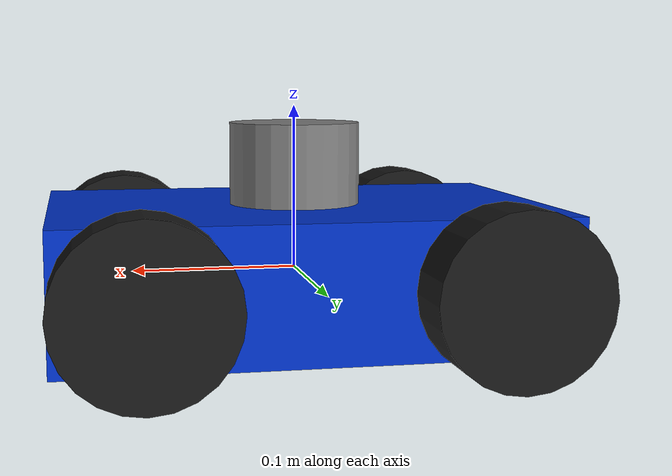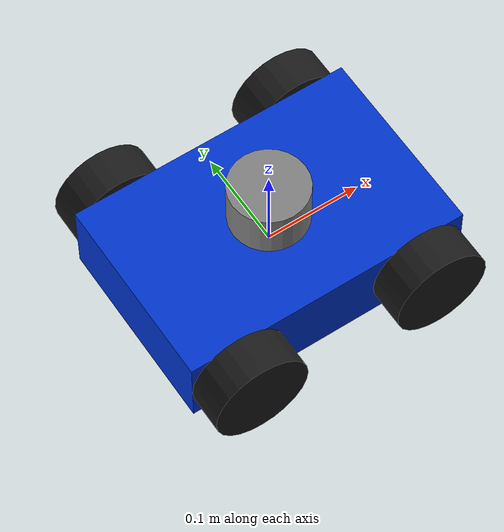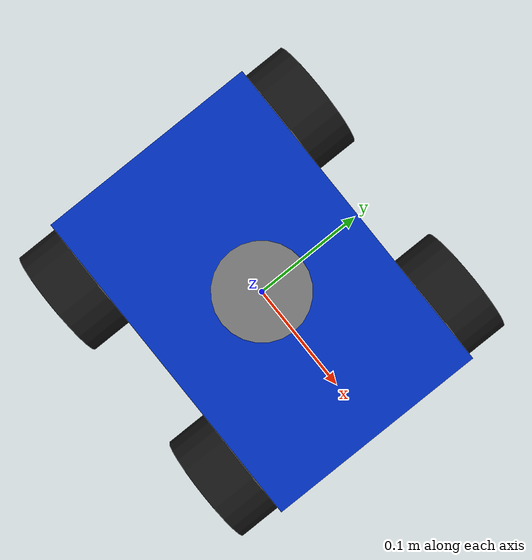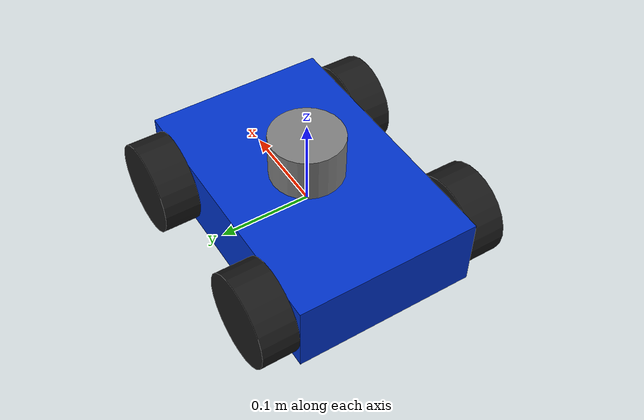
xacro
<?xml version="1.0"?>
<robot name="robot_4wd" xmlns:xacro="http://www.ros.org/wiki/xacro">

  <!-- ── Properties ────────────────────────────────────────────── -->
  <xacro:property name="chassis_len"    value="0.30"/>
  <xacro:property name="chassis_width"  value="0.20"/>
  <xacro:property name="chassis_height" value="0.08"/>
  <xacro:property name="wheel_radius"   value="0.05"/>
  <xacro:property name="wheel_thick"    value="0.04"/>

  <!-- ── Inertia helpers ───────────────────────────────────────── -->
  <xacro:macro name="box_inertia" params="m w l h">
    <inertial>
      <mass value="${m}"/>
      <inertia ixx="${m*(h*h+w*w)/12}" ixy="0" ixz="0"
               iyy="${m*(l*l+h*h)/12}" iyz="0"
               izz="${m*(l*l+w*w)/12}"/>
    </inertial>
  </xacro:macro>

  <xacro:macro name="cylinder_inertia" params="m r h">
    <inertial>
      <mass value="${m}"/>
      <inertia ixx="${m*(3*r*r+h*h)/12}" ixy="0" ixz="0"
               iyy="${m*(3*r*r+h*h)/12}" iyz="0"
               izz="${m*r*r/2}"/>
    </inertial>
  </xacro:macro>

  <!-- ── Materials ─────────────────────────────────────────────── -->
  <material name="blue"><color rgba="0.0 0.2 0.8 1.0"/></material>
  <material name="black"><color rgba="0.1 0.1 0.1 1.0"/></material>
  <material name="grey"><color rgba="0.5 0.5 0.5 1.0"/></material>

  <!-- ── Chassis ────────────────────────────────────────────────── -->
  <link name="chassis">
    <visual>
      <geometry><box size="${chassis_len} ${chassis_width} ${chassis_height}"/></geometry>
      <material name="blue"/>
    </visual>
    <collision>
      <geometry><box size="${chassis_len} ${chassis_width} ${chassis_height}"/></geometry>
    </collision>
    <xacro:box_inertia m="4.0" w="${chassis_width}" l="${chassis_len}" h="${chassis_height}"/>
  </link>

  <!-- ── Wheel macro (direct-drive, no steer joint) ────────────── -->
  <!--  Wheels are directly attached to chassis.
        Gazebo disables collision between chassis ↔ wheel_link (1-hop).
        axis xyz="0 1 0" → positive velocity = forward motion.          -->
  <xacro:macro name="drive_wheel" params="prefix x_pos y_pos">
    <link name="${prefix}_wheel_link">
      <visual>
        <geometry><cylinder radius="${wheel_radius}" length="${wheel_thick}"/></geometry>
        <origin xyz="0 0 0" rpy="1.5708 0 0"/>
        <material name="black"/>
      </visual>
      <collision>
        <geometry><cylinder radius="${wheel_radius}" length="${wheel_thick}"/></geometry>
        <origin xyz="0 0 0" rpy="1.5708 0 0"/>
      </collision>
      <xacro:cylinder_inertia m="0.8" r="${wheel_radius}" h="${wheel_thick}"/>
    </link>
    <joint name="${prefix}_wheel_joint" type="continuous">
      <parent link="chassis"/>
      <child  link="${prefix}_wheel_link"/>
      <origin xyz="${x_pos} ${y_pos} 0" rpy="0 0 0"/>
      <axis xyz="0 1 0"/>
      <limit effort="10" velocity="25"/>
      <dynamics damping="0.05" friction="0.1"/>
    </joint>
  </xacro:macro>

  <xacro:drive_wheel prefix="fl" x_pos=" 0.10" y_pos=" 0.12"/>
  <xacro:drive_wheel prefix="fr" x_pos=" 0.10" y_pos="-0.12"/>
  <xacro:drive_wheel prefix="rl" x_pos="-0.10" y_pos=" 0.12"/>
  <xacro:drive_wheel prefix="rr" x_pos="-0.10" y_pos="-0.12"/>

  <!-- ── LiDAR ──────────────────────────────────────────────────── -->
  <link name="lidar_link">
    <visual>
      <geometry><cylinder radius="0.04" length="0.05"/></geometry>
      <material name="grey"/>
    </visual>
    <collision>
      <geometry><cylinder radius="0.04" length="0.05"/></geometry>
    </collision>
    <xacro:cylinder_inertia m="0.2" r="0.04" h="0.05"/>
  </link>
  <!-- Mounted on top of chassis, centred -->
  <joint name="lidar_joint" type="fixed">
    <parent link="chassis"/>
    <child  link="lidar_link"/>
    <origin xyz="0 0 ${chassis_height/2 + 0.025}" rpy="0 0 0"/>
  </joint>

  <!-- LiDAR sensor plugin (360°, 10 Hz, range 0.12 – 10 m) -->
  <gazebo reference="lidar_link">
    <sensor name="lidar" type="ray">
      <always_on>true</always_on>
      <visualize>true</visualize>
      <update_rate>10</update_rate>
      <ray>
        <scan>
          <horizontal>
            <samples>360</samples>
            <resolution>1</resolution>
            <min_angle>-3.14159</min_angle>
            <max_angle>3.14159</max_angle>
          </horizontal>
        </scan>
        <range>
          <min>0.12</min>
          <max>10.0</max>
          <resolution>0.01</resolution>
        </range>
      </ray>
      <plugin name="gazebo_ros_lidar_controller" filename="libgazebo_ros_ray_sensor.so">
        <ros><remapping>~/out:=scan</remapping></ros>
        <output_type>sensor_msgs/LaserScan</output_type>
        <frame_name>lidar_link</frame_name>
      </plugin>
    </sensor>
  </gazebo>

  <!-- ── ros2_control interfaces ───────────────────────────────── -->
  <ros2_control name="GazeboSystem" type="system">
    <hardware><plugin>gazebo_ros2_control/GazeboSystem</plugin></hardware>
    <joint name="fl_wheel_joint">
      <command_interface name="velocity"/>
      <state_interface name="velocity"/>
      <state_interface name="position"/>
    </joint>
    <joint name="fr_wheel_joint">
      <command_interface name="velocity"/>
      <state_interface name="velocity"/>
      <state_interface name="position"/>
    </joint>
    <joint name="rl_wheel_joint">
      <command_interface name="velocity"/>
      <state_interface name="velocity"/>
      <state_interface name="position"/>
    </joint>
    <joint name="rr_wheel_joint">
      <command_interface name="velocity"/>
      <state_interface name="velocity"/>
      <state_interface name="position"/>
    </joint>
  </ros2_control>

  <!-- gazebo_ros2_control plugin – loads controllers_4wd.yaml -->
  <gazebo>
    <plugin filename="libgazebo_ros2_control.so" name="gazebo_ros2_control">
      <parameters>/home/kenji/Desktop/my_4ws_robot/config/controllers_4wd.yaml</parameters>
      <!-- Fetch robot_description from RSP node parameter instead of CLI arg.
           Avoids "Couldn't parse parameter override rule" error in Humble. -->
      <robot_param>robot_description</robot_param>
      <robot_param_node>robot_state_publisher</robot_param_node>
    </plugin>
  </gazebo>

  <!-- Ground-truth odometry (topic: /ground_truth) -->
  <gazebo>
    <plugin name="gazebo_ros_p3d" filename="libgazebo_ros_p3d.so">
      <ros>
        <namespace>/</namespace>
        <remapping>odom:=/ground_truth</remapping>
      </ros>
      <body_name>chassis</body_name>
      <frame_name>world</frame_name>
      <update_rate>50.0</update_rate>
      <xyz_offset>0 0 0</xyz_offset>
      <rpy_offset>0 0 0</rpy_offset>
      <gaussian_noise>0.0</gaussian_noise>
    </plugin>
  </gazebo>

</robot>
